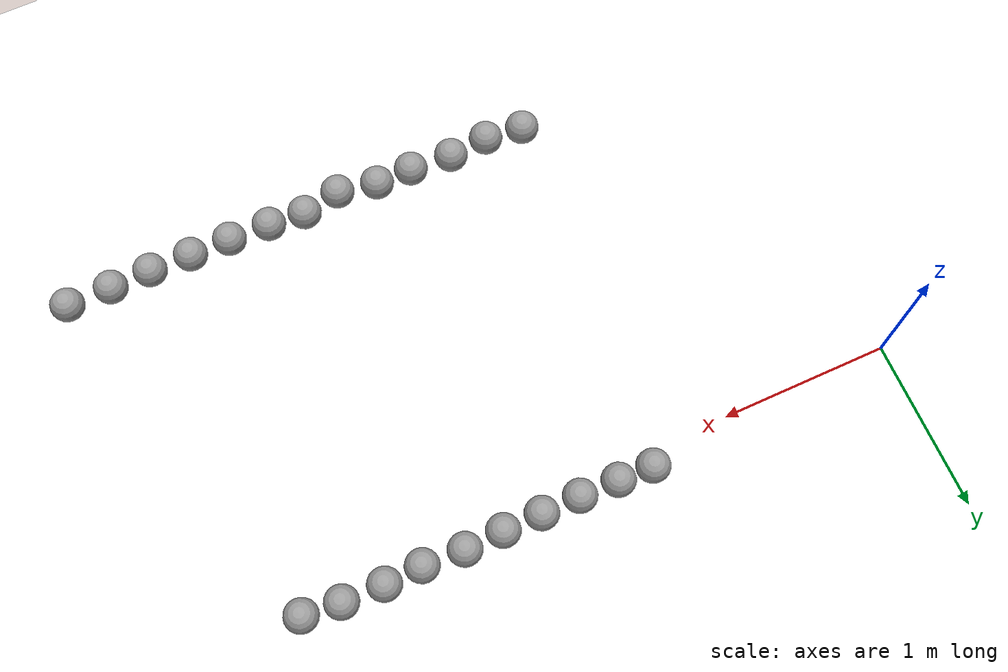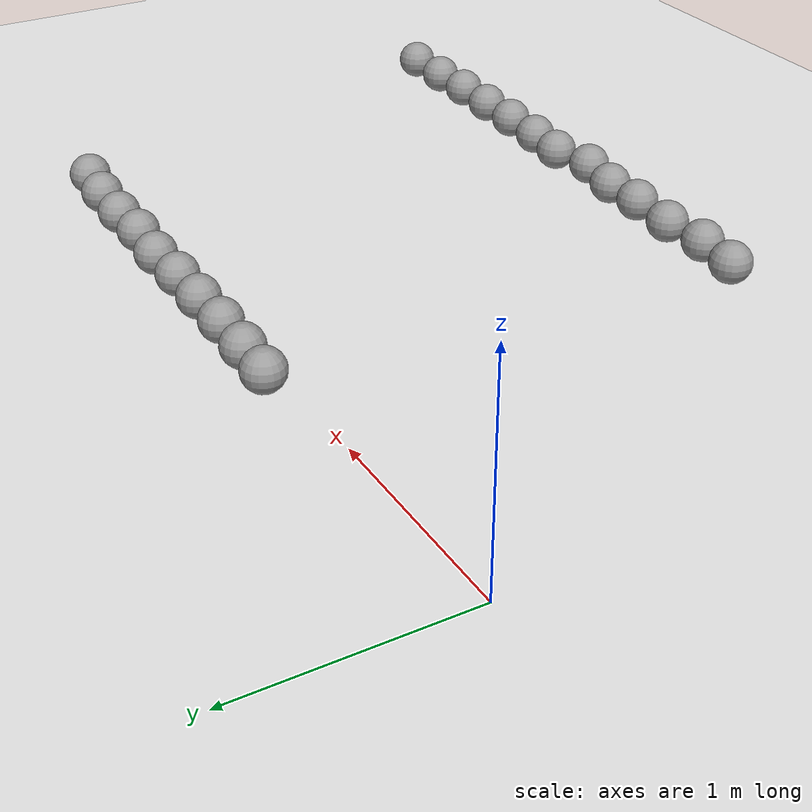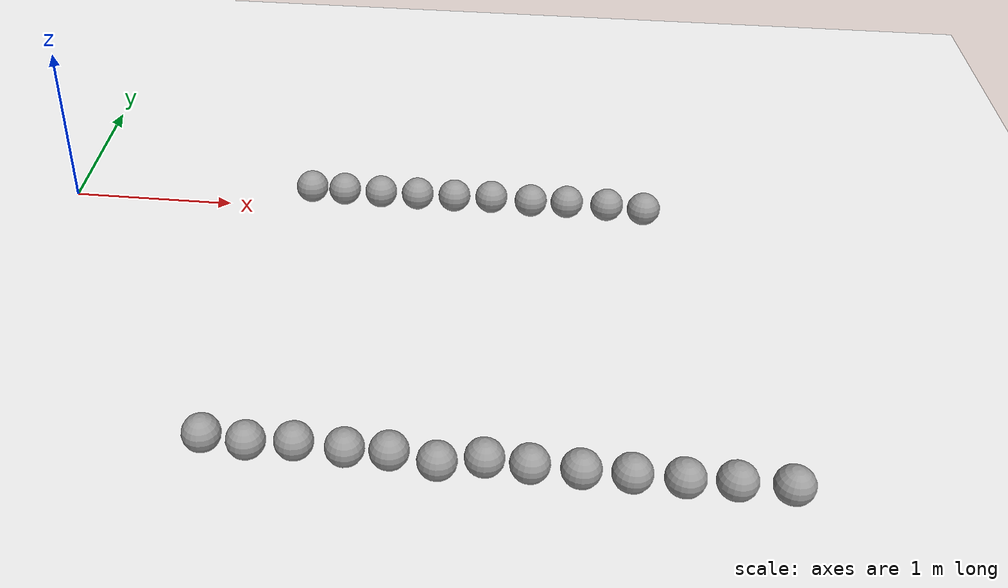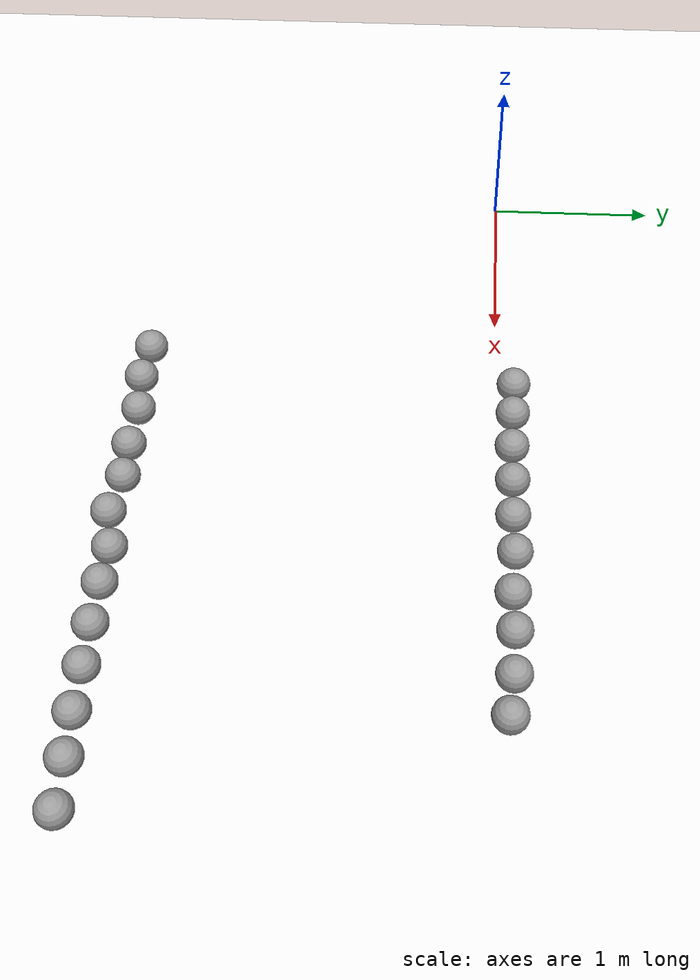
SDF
<sdf version="1.7">
 <world name="default">
  <model name="ground_plane">
   <static>1</static>
   <link name="link">
    <collision name="collision">
     <geometry><plane><normal>0 0 1</normal><size>100 100</size></plane></geometry>
     <surface>
      <contact><collide_bitmask>65535</collide_bitmask></contact>
      <friction><ode><mu>100</mu><mu2>50</mu2></ode></friction>
     </surface>
    </collision>
    <visual name="visual">
     <cast_shadows>0</cast_shadows>
     <geometry><plane><normal>0 0 1</normal><size>100 100</size></plane></geometry>
     <material>
      <script><uri>file://media/materials/scripts/gazebo.material</uri><name>Gazebo/White</name></script>
     </material>
    </visual>
   </link>
  </model>
  <model name="sphere_49">
   <link name="link_0">
    <inertial>
     <mass>1</mass>
     <inertia><ixx>0.1</ixx><ixy>0</ixy><ixz>0</ixz><iyy>0.1</iyy><iyz>0</iyz><izz>0.1</izz></inertia>
    </inertial>
    <visual name="visual">
     <geometry><sphere><radius>0.1</radius></sphere></geometry>
     <material>
      <lighting>1</lighting>
      <script><uri>file://media/materials/scripts/gazebo.material</uri><name>Gazebo/Grey</name></script>
      <shader type="pixel"><normal_map>__default__</normal_map></shader>
      <ambient>0.3 0.3 0.3 1</ambient>
      <diffuse>0.7 0.7 0.7 1</diffuse>
      <specular>0.01 0.01 0.01 1</specular>
      <emissive>0 0 0 1</emissive>
     </material>
    </visual>
    <collision name="collision">
     <geometry><sphere><radius>0.1</radius></sphere></geometry>
     <surface>
      <friction>
       <ode><mu>1</mu><mu2>1</mu2><fdir1>0 0 0</fdir1><slip1>0</slip1><slip2>0</slip2></ode>
       <torsional>
        <coefficient>1</coefficient>
        <patch_radius>0</patch_radius>
        <surface_radius>0</surface_radius>
        <use_patch_radius>1</use_patch_radius>
        <ode><slip>0</slip></ode>
       </torsional>
      </friction>
      <bounce><restitution_coefficient>0</restitution_coefficient><threshold>1e+06</threshold></bounce>
      <contact>
       <collide_without_contact>0</collide_without_contact>
       <collide_without_contact_bitmask>1</collide_without_contact_bitmask>
       <collide_bitmask>1</collide_bitmask>
       <ode>
        <soft_cfm>0</soft_cfm>
        <soft_erp>0.2</soft_erp>
        <kp>1e+13</kp>
        <kd>1</kd>
        <max_vel>0.01</max_vel>
        <min_depth>0</min_depth>
       </ode>
       <bullet>
        <split_impulse>1</split_impulse>
        <split_impulse_penetration_threshold>-0.01</split_impulse_penetration_threshold>
        <soft_cfm>0</soft_cfm>
        <soft_erp>0.2</soft_erp>
        <kp>1e+13</kp>
        <kd>1</kd>
       </bullet>
      </contact>
     </surface>
    </collision>
   </link>
   <static>0</static>
   <pose>1.3179 -2.0915 0.1 0 -0 0</pose>
  </model>
  <model name="sphere_50">
   <link name="link_0">
    <inertial>
     <mass>1</mass>
     <inertia><ixx>0.1</ixx><ixy>0</ixy><ixz>0</ixz><iyy>0.1</iyy><iyz>0</iyz><izz>0.1</izz></inertia>
    </inertial>
    <visual name="visual">
     <geometry><sphere><radius>0.1</radius></sphere></geometry>
     <material>
      <lighting>1</lighting>
      <script><uri>file://media/materials/scripts/gazebo.material</uri><name>Gazebo/Grey</name></script>
      <shader type="pixel"><normal_map>__default__</normal_map></shader>
      <ambient>0.3 0.3 0.3 1</ambient>
      <diffuse>0.7 0.7 0.7 1</diffuse>
      <specular>0.01 0.01 0.01 1</specular>
      <emissive>0 0 0 1</emissive>
     </material>
    </visual>
    <collision name="collision">
     <geometry><sphere><radius>0.1</radius></sphere></geometry>
     <surface>
      <friction>
       <ode><mu>1</mu><mu2>1</mu2><fdir1>0 0 0</fdir1><slip1>0</slip1><slip2>0</slip2></ode>
       <torsional>
        <coefficient>1</coefficient>
        <patch_radius>0</patch_radius>
        <surface_radius>0</surface_radius>
        <use_patch_radius>1</use_patch_radius>
        <ode><slip>0</slip></ode>
       </torsional>
      </friction>
      <bounce><restitution_coefficient>0</restitution_coefficient><threshold>1e+06</threshold></bounce>
      <contact>
       <collide_without_contact>0</collide_without_contact>
       <collide_without_contact_bitmask>1</collide_without_contact_bitmask>
       <collide_bitmask>1</collide_bitmask>
       <ode>
        <soft_cfm>0</soft_cfm>
        <soft_erp>0.2</soft_erp>
        <kp>1e+13</kp>
        <kd>1</kd>
        <max_vel>0.01</max_vel>
        <min_depth>0</min_depth>
       </ode>
       <bullet>
        <split_impulse>1</split_impulse>
        <split_impulse_penetration_threshold>-0.01</split_impulse_penetration_threshold>
        <soft_cfm>0</soft_cfm>
        <soft_erp>0.2</soft_erp>
        <kp>1e+13</kp>
        <kd>1</kd>
       </bullet>
      </contact>
     </surface>
    </collision>
   </link>
   <static>0</static>
   <pose>1.54416 -2.11569 0.1 0 -0 0</pose>
  </model>
  <model name="sphere_51">
   <link name="link_0">
    <inertial>
     <mass>1</mass>
     <inertia><ixx>0.1</ixx><ixy>0</ixy><ixz>0</ixz><iyy>0.1</iyy><iyz>0</iyz><izz>0.1</izz></inertia>
    </inertial>
    <visual name="visual">
     <geometry><sphere><radius>0.1</radius></sphere></geometry>
     <material>
      <lighting>1</lighting>
      <script><uri>file://media/materials/scripts/gazebo.material</uri><name>Gazebo/Grey</name></script>
      <shader type="pixel"><normal_map>__default__</normal_map></shader>
      <ambient>0.3 0.3 0.3 1</ambient>
      <diffuse>0.7 0.7 0.7 1</diffuse>
      <specular>0.01 0.01 0.01 1</specular>
      <emissive>0 0 0 1</emissive>
     </material>
    </visual>
    <collision name="collision">
     <geometry><sphere><radius>0.1</radius></sphere></geometry>
     <surface>
      <friction>
       <ode><mu>1</mu><mu2>1</mu2><fdir1>0 0 0</fdir1><slip1>0</slip1><slip2>0</slip2></ode>
       <torsional>
        <coefficient>1</coefficient>
        <patch_radius>0</patch_radius>
        <surface_radius>0</surface_radius>
        <use_patch_radius>1</use_patch_radius>
        <ode><slip>0</slip></ode>
       </torsional>
      </friction>
      <bounce><restitution_coefficient>0</restitution_coefficient><threshold>1e+06</threshold></bounce>
      <contact>
       <collide_without_contact>0</collide_without_contact>
       <collide_without_contact_bitmask>1</collide_without_contact_bitmask>
       <collide_bitmask>1</collide_bitmask>
       <ode>
        <soft_cfm>0</soft_cfm>
        <soft_erp>0.2</soft_erp>
        <kp>1e+13</kp>
        <kd>1</kd>
        <max_vel>0.01</max_vel>
        <min_depth>0</min_depth>
       </ode>
       <bullet>
        <split_impulse>1</split_impulse>
        <split_impulse_penetration_threshold>-0.01</split_impulse_penetration_threshold>
        <soft_cfm>0</soft_cfm>
        <soft_erp>0.2</soft_erp>
        <kp>1e+13</kp>
        <kd>1</kd>
       </bullet>
      </contact>
     </surface>
    </collision>
   </link>
   <static>0</static>
   <pose>1.77871 -2.09636 0.1 0 -0 0</pose>
  </model>
  <model name="sphere_52">
   <link name="link_0">
    <inertial>
     <mass>1</mass>
     <inertia><ixx>0.1</ixx><ixy>0</ixy><ixz>0</ixz><iyy>0.1</iyy><iyz>0</iyz><izz>0.1</izz></inertia>
    </inertial>
    <visual name="visual">
     <geometry><sphere><radius>0.1</radius></sphere></geometry>
     <material>
      <lighting>1</lighting>
      <script><uri>file://media/materials/scripts/gazebo.material</uri><name>Gazebo/Grey</name></script>
      <shader type="pixel"><normal_map>__default__</normal_map></shader>
      <ambient>0.3 0.3 0.3 1</ambient>
      <diffuse>0.7 0.7 0.7 1</diffuse>
      <specular>0.01 0.01 0.01 1</specular>
      <emissive>0 0 0 1</emissive>
     </material>
    </visual>
    <collision name="collision">
     <geometry><sphere><radius>0.1</radius></sphere></geometry>
     <surface>
      <friction>
       <ode><mu>1</mu><mu2>1</mu2><fdir1>0 0 0</fdir1><slip1>0</slip1><slip2>0</slip2></ode>
       <torsional>
        <coefficient>1</coefficient>
        <patch_radius>0</patch_radius>
        <surface_radius>0</surface_radius>
        <use_patch_radius>1</use_patch_radius>
        <ode><slip>0</slip></ode>
       </torsional>
      </friction>
      <bounce><restitution_coefficient>0</restitution_coefficient><threshold>1e+06</threshold></bounce>
      <contact>
       <collide_without_contact>0</collide_without_contact>
       <collide_without_contact_bitmask>1</collide_without_contact_bitmask>
       <collide_bitmask>1</collide_bitmask>
       <ode>
        <soft_cfm>0</soft_cfm>
        <soft_erp>0.2</soft_erp>
        <kp>1e+13</kp>
        <kd>1</kd>
        <max_vel>0.01</max_vel>
        <min_depth>0</min_depth>
       </ode>
       <bullet>
        <split_impulse>1</split_impulse>
        <split_impulse_penetration_threshold>-0.01</split_impulse_penetration_threshold>
        <soft_cfm>0</soft_cfm>
        <soft_erp>0.2</soft_erp>
        <kp>1e+13</kp>
        <kd>1</kd>
       </bullet>
      </contact>
     </surface>
    </collision>
   </link>
   <static>0</static>
   <pose>2.03098 -2.11168 0.1 0 -0 0</pose>
  </model>
  <model name="sphere_53">
   <link name="link_0">
    <inertial>
     <mass>1</mass>
     <inertia><ixx>0.1</ixx><ixy>0</ixy><ixz>0</ixz><iyy>0.1</iyy><iyz>0</iyz><izz>0.1</izz></inertia>
    </inertial>
    <visual name="visual">
     <geometry><sphere><radius>0.1</radius></sphere></geometry>
     <material>
      <lighting>1</lighting>
      <script><uri>file://media/materials/scripts/gazebo.material</uri><name>Gazebo/Grey</name></script>
      <shader type="pixel"><normal_map>__default__</normal_map></shader>
      <ambient>0.3 0.3 0.3 1</ambient>
      <diffuse>0.7 0.7 0.7 1</diffuse>
      <specular>0.01 0.01 0.01 1</specular>
      <emissive>0 0 0 1</emissive>
     </material>
    </visual>
    <collision name="collision">
     <geometry><sphere><radius>0.1</radius></sphere></geometry>
     <surface>
      <friction>
       <ode><mu>1</mu><mu2>1</mu2><fdir1>0 0 0</fdir1><slip1>0</slip1><slip2>0</slip2></ode>
       <torsional>
        <coefficient>1</coefficient>
        <patch_radius>0</patch_radius>
        <surface_radius>0</surface_radius>
        <use_patch_radius>1</use_patch_radius>
        <ode><slip>0</slip></ode>
       </torsional>
      </friction>
      <bounce><restitution_coefficient>0</restitution_coefficient><threshold>1e+06</threshold></bounce>
      <contact>
       <collide_without_contact>0</collide_without_contact>
       <collide_without_contact_bitmask>1</collide_without_contact_bitmask>
       <collide_bitmask>1</collide_bitmask>
       <ode>
        <soft_cfm>0</soft_cfm>
        <soft_erp>0.2</soft_erp>
        <kp>1e+13</kp>
        <kd>1</kd>
        <max_vel>0.01</max_vel>
        <min_depth>0</min_depth>
       </ode>
       <bullet>
        <split_impulse>1</split_impulse>
        <split_impulse_penetration_threshold>-0.01</split_impulse_penetration_threshold>
        <soft_cfm>0</soft_cfm>
        <soft_erp>0.2</soft_erp>
        <kp>1e+13</kp>
        <kd>1</kd>
       </bullet>
      </contact>
     </surface>
    </collision>
   </link>
   <static>0</static>
   <pose>2.24831 -2.10986 0.1 0 -0 0</pose>
  </model>
  <model name="sphere_54">
   <link name="link_0">
    <inertial>
     <mass>1</mass>
     <inertia><ixx>0.1</ixx><ixy>0</ixy><ixz>0</ixz><iyy>0.1</iyy><iyz>0</iyz><izz>0.1</izz></inertia>
    </inertial>
    <visual name="visual">
     <geometry><sphere><radius>0.1</radius></sphere></geometry>
     <material>
      <lighting>1</lighting>
      <script><uri>file://media/materials/scripts/gazebo.material</uri><name>Gazebo/Grey</name></script>
      <shader type="pixel"><normal_map>__default__</normal_map></shader>
      <ambient>0.3 0.3 0.3 1</ambient>
      <diffuse>0.7 0.7 0.7 1</diffuse>
      <specular>0.01 0.01 0.01 1</specular>
      <emissive>0 0 0 1</emissive>
     </material>
    </visual>
    <collision name="collision">
     <geometry><sphere><radius>0.1</radius></sphere></geometry>
     <surface>
      <friction>
       <ode><mu>1</mu><mu2>1</mu2><fdir1>0 0 0</fdir1><slip1>0</slip1><slip2>0</slip2></ode>
       <torsional>
        <coefficient>1</coefficient>
        <patch_radius>0</patch_radius>
        <surface_radius>0</surface_radius>
        <use_patch_radius>1</use_patch_radius>
        <ode><slip>0</slip></ode>
       </torsional>
      </friction>
      <bounce><restitution_coefficient>0</restitution_coefficient><threshold>1e+06</threshold></bounce>
      <contact>
       <collide_without_contact>0</collide_without_contact>
       <collide_without_contact_bitmask>1</collide_without_contact_bitmask>
       <collide_bitmask>1</collide_bitmask>
       <ode>
        <soft_cfm>0</soft_cfm>
        <soft_erp>0.2</soft_erp>
        <kp>1e+13</kp>
        <kd>1</kd>
        <max_vel>0.01</max_vel>
        <min_depth>0</min_depth>
       </ode>
       <bullet>
        <split_impulse>1</split_impulse>
        <split_impulse_penetration_threshold>-0.01</split_impulse_penetration_threshold>
        <soft_cfm>0</soft_cfm>
        <soft_erp>0.2</soft_erp>
        <kp>1e+13</kp>
        <kd>1</kd>
       </bullet>
      </contact>
     </surface>
    </collision>
   </link>
   <static>0</static>
   <pose>2.4834 -2.15139 0.1 0 -0 0</pose>
  </model>
  <model name="sphere_55">
   <link name="link_0">
    <inertial>
     <mass>1</mass>
     <inertia><ixx>0.1</ixx><ixy>0</ixy><ixz>0</ixz><iyy>0.1</iyy><iyz>0</iyz><izz>0.1</izz></inertia>
    </inertial>
    <visual name="visual">
     <geometry><sphere><radius>0.1</radius></sphere></geometry>
     <material>
      <lighting>1</lighting>
      <script><uri>file://media/materials/scripts/gazebo.material</uri><name>Gazebo/Grey</name></script>
      <shader type="pixel"><normal_map>__default__</normal_map></shader>
      <ambient>0.3 0.3 0.3 1</ambient>
      <diffuse>0.7 0.7 0.7 1</diffuse>
      <specular>0.01 0.01 0.01 1</specular>
      <emissive>0 0 0 1</emissive>
     </material>
    </visual>
    <collision name="collision">
     <geometry><sphere><radius>0.1</radius></sphere></geometry>
     <surface>
      <friction>
       <ode><mu>1</mu><mu2>1</mu2><fdir1>0 0 0</fdir1><slip1>0</slip1><slip2>0</slip2></ode>
       <torsional>
        <coefficient>1</coefficient>
        <patch_radius>0</patch_radius>
        <surface_radius>0</surface_radius>
        <use_patch_radius>1</use_patch_radius>
        <ode><slip>0</slip></ode>
       </torsional>
      </friction>
      <bounce><restitution_coefficient>0</restitution_coefficient><threshold>1e+06</threshold></bounce>
      <contact>
       <collide_without_contact>0</collide_without_contact>
       <collide_without_contact_bitmask>1</collide_without_contact_bitmask>
       <collide_bitmask>1</collide_bitmask>
       <ode>
        <soft_cfm>0</soft_cfm>
        <soft_erp>0.2</soft_erp>
        <kp>1e+13</kp>
        <kd>1</kd>
        <max_vel>0.01</max_vel>
        <min_depth>0</min_depth>
       </ode>
       <bullet>
        <split_impulse>1</split_impulse>
        <split_impulse_penetration_threshold>-0.01</split_impulse_penetration_threshold>
        <soft_cfm>0</soft_cfm>
        <soft_erp>0.2</soft_erp>
        <kp>1e+13</kp>
        <kd>1</kd>
       </bullet>
      </contact>
     </surface>
    </collision>
   </link>
   <static>0</static>
   <pose>2.70902 -2.10606 0.1 0 -0 0</pose>
  </model>
  <model name="sphere_56">
   <link name="link_0">
    <inertial>
     <mass>1</mass>
     <inertia><ixx>0.1</ixx><ixy>0</ixy><ixz>0</ixz><iyy>0.1</iyy><iyz>0</iyz><izz>0.1</izz></inertia>
    </inertial>
    <visual name="visual">
     <geometry><sphere><radius>0.1</radius></sphere></geometry>
     <material>
      <lighting>1</lighting>
      <script><uri>file://media/materials/scripts/gazebo.material</uri><name>Gazebo/Grey</name></script>
      <shader type="pixel"><normal_map>__default__</normal_map></shader>
      <ambient>0.3 0.3 0.3 1</ambient>
      <diffuse>0.7 0.7 0.7 1</diffuse>
      <specular>0.01 0.01 0.01 1</specular>
      <emissive>0 0 0 1</emissive>
     </material>
    </visual>
    <collision name="collision">
     <geometry><sphere><radius>0.1</radius></sphere></geometry>
     <surface>
      <friction>
       <ode><mu>1</mu><mu2>1</mu2><fdir1>0 0 0</fdir1><slip1>0</slip1><slip2>0</slip2></ode>
       <torsional>
        <coefficient>1</coefficient>
        <patch_radius>0</patch_radius>
        <surface_radius>0</surface_radius>
        <use_patch_radius>1</use_patch_radius>
        <ode><slip>0</slip></ode>
       </torsional>
      </friction>
      <bounce><restitution_coefficient>0</restitution_coefficient><threshold>1e+06</threshold></bounce>
      <contact>
       <collide_without_contact>0</collide_without_contact>
       <collide_without_contact_bitmask>1</collide_without_contact_bitmask>
       <collide_bitmask>1</collide_bitmask>
       <ode>
        <soft_cfm>0</soft_cfm>
        <soft_erp>0.2</soft_erp>
        <kp>1e+13</kp>
        <kd>1</kd>
        <max_vel>0.01</max_vel>
        <min_depth>0</min_depth>
       </ode>
       <bullet>
        <split_impulse>1</split_impulse>
        <split_impulse_penetration_threshold>-0.01</split_impulse_penetration_threshold>
        <soft_cfm>0</soft_cfm>
        <soft_erp>0.2</soft_erp>
        <kp>1e+13</kp>
        <kd>1</kd>
       </bullet>
      </contact>
     </surface>
    </collision>
   </link>
   <static>0</static>
   <pose>2.92652 -2.12166 0.1 0 -0 0</pose>
  </model>
  <model name="sphere_57">
   <link name="link_0">
    <inertial>
     <mass>1</mass>
     <inertia><ixx>0.1</ixx><ixy>0</ixy><ixz>0</ixz><iyy>0.1</iyy><iyz>0</iyz><izz>0.1</izz></inertia>
    </inertial>
    <visual name="visual">
     <geometry><sphere><radius>0.1</radius></sphere></geometry>
     <material>
      <lighting>1</lighting>
      <script><uri>file://media/materials/scripts/gazebo.material</uri><name>Gazebo/Grey</name></script>
      <shader type="pixel"><normal_map>__default__</normal_map></shader>
      <ambient>0.3 0.3 0.3 1</ambient>
      <diffuse>0.7 0.7 0.7 1</diffuse>
      <specular>0.01 0.01 0.01 1</specular>
      <emissive>0 0 0 1</emissive>
     </material>
    </visual>
    <collision name="collision">
     <geometry><sphere><radius>0.1</radius></sphere></geometry>
     <surface>
      <friction>
       <ode><mu>1</mu><mu2>1</mu2><fdir1>0 0 0</fdir1><slip1>0</slip1><slip2>0</slip2></ode>
       <torsional>
        <coefficient>1</coefficient>
        <patch_radius>0</patch_radius>
        <surface_radius>0</surface_radius>
        <use_patch_radius>1</use_patch_radius>
        <ode><slip>0</slip></ode>
       </torsional>
      </friction>
      <bounce><restitution_coefficient>0</restitution_coefficient><threshold>1e+06</threshold></bounce>
      <contact>
       <collide_without_contact>0</collide_without_contact>
       <collide_without_contact_bitmask>1</collide_without_contact_bitmask>
       <collide_bitmask>1</collide_bitmask>
       <ode>
        <soft_cfm>0</soft_cfm>
        <soft_erp>0.2</soft_erp>
        <kp>1e+13</kp>
        <kd>1</kd>
        <max_vel>0.01</max_vel>
        <min_depth>0</min_depth>
       </ode>
       <bullet>
        <split_impulse>1</split_impulse>
        <split_impulse_penetration_threshold>-0.01</split_impulse_penetration_threshold>
        <soft_cfm>0</soft_cfm>
        <soft_erp>0.2</soft_erp>
        <kp>1e+13</kp>
        <kd>1</kd>
       </bullet>
      </contact>
     </surface>
    </collision>
   </link>
   <static>0</static>
   <pose>3.17 -2.12832 0.1 0 -0 0</pose>
  </model>
  <model name="sphere_58">
   <link name="link_0">
    <inertial>
     <mass>1</mass>
     <inertia><ixx>0.1</ixx><ixy>0</ixy><ixz>0</ixz><iyy>0.1</iyy><iyz>0</iyz><izz>0.1</izz></inertia>
    </inertial>
    <visual name="visual">
     <geometry><sphere><radius>0.1</radius></sphere></geometry>
     <material>
      <lighting>1</lighting>
      <script><uri>file://media/materials/scripts/gazebo.material</uri><name>Gazebo/Grey</name></script>
      <shader type="pixel"><normal_map>__default__</normal_map></shader>
      <ambient>0.3 0.3 0.3 1</ambient>
      <diffuse>0.7 0.7 0.7 1</diffuse>
      <specular>0.01 0.01 0.01 1</specular>
      <emissive>0 0 0 1</emissive>
     </material>
    </visual>
    <collision name="collision">
     <geometry><sphere><radius>0.1</radius></sphere></geometry>
     <surface>
      <friction>
       <ode><mu>1</mu><mu2>1</mu2><fdir1>0 0 0</fdir1><slip1>0</slip1><slip2>0</slip2></ode>
       <torsional>
        <coefficient>1</coefficient>
        <patch_radius>0</patch_radius>
        <surface_radius>0</surface_radius>
        <use_patch_radius>1</use_patch_radius>
        <ode><slip>0</slip></ode>
       </torsional>
      </friction>
      <bounce><restitution_coefficient>0</restitution_coefficient><threshold>1e+06</threshold></bounce>
      <contact>
       <collide_without_contact>0</collide_without_contact>
       <collide_without_contact_bitmask>1</collide_without_contact_bitmask>
       <collide_bitmask>1</collide_bitmask>
       <ode>
        <soft_cfm>0</soft_cfm>
        <soft_erp>0.2</soft_erp>
        <kp>1e+13</kp>
        <kd>1</kd>
        <max_vel>0.01</max_vel>
        <min_depth>0</min_depth>
       </ode>
       <bullet>
        <split_impulse>1</split_impulse>
        <split_impulse_penetration_threshold>-0.01</split_impulse_penetration_threshold>
        <soft_cfm>0</soft_cfm>
        <soft_erp>0.2</soft_erp>
        <kp>1e+13</kp>
        <kd>1</kd>
       </bullet>
      </contact>
     </surface>
    </collision>
   </link>
   <static>0</static>
   <pose>3.41086 -2.12917 0.1 0 -0 0</pose>
  </model>
  <model name="sphere_59">
   <link name="link_0">
    <inertial>
     <mass>1</mass>
     <inertia><ixx>0.1</ixx><ixy>0</ixy><ixz>0</ixz><iyy>0.1</iyy><iyz>0</iyz><izz>0.1</izz></inertia>
    </inertial>
    <visual name="visual">
     <geometry><sphere><radius>0.1</radius></sphere></geometry>
     <material>
      <lighting>1</lighting>
      <script><uri>file://media/materials/scripts/gazebo.material</uri><name>Gazebo/Grey</name></script>
      <shader type="pixel"><normal_map>__default__</normal_map></shader>
      <ambient>0.3 0.3 0.3 1</ambient>
      <diffuse>0.7 0.7 0.7 1</diffuse>
      <specular>0.01 0.01 0.01 1</specular>
      <emissive>0 0 0 1</emissive>
     </material>
    </visual>
    <collision name="collision">
     <geometry><sphere><radius>0.1</radius></sphere></geometry>
     <surface>
      <friction>
       <ode><mu>1</mu><mu2>1</mu2><fdir1>0 0 0</fdir1><slip1>0</slip1><slip2>0</slip2></ode>
       <torsional>
        <coefficient>1</coefficient>
        <patch_radius>0</patch_radius>
        <surface_radius>0</surface_radius>
        <use_patch_radius>1</use_patch_radius>
        <ode><slip>0</slip></ode>
       </torsional>
      </friction>
      <bounce><restitution_coefficient>0</restitution_coefficient><threshold>1e+06</threshold></bounce>
      <contact>
       <collide_without_contact>0</collide_without_contact>
       <collide_without_contact_bitmask>1</collide_without_contact_bitmask>
       <collide_bitmask>1</collide_bitmask>
       <ode>
        <soft_cfm>0</soft_cfm>
        <soft_erp>0.2</soft_erp>
        <kp>1e+13</kp>
        <kd>1</kd>
        <max_vel>0.01</max_vel>
        <min_depth>0</min_depth>
       </ode>
       <bullet>
        <split_impulse>1</split_impulse>
        <split_impulse_penetration_threshold>-0.01</split_impulse_penetration_threshold>
        <soft_cfm>0</soft_cfm>
        <soft_erp>0.2</soft_erp>
        <kp>1e+13</kp>
        <kd>1</kd>
       </bullet>
      </contact>
     </surface>
    </collision>
   </link>
   <static>0</static>
   <pose>3.65822 -2.13229 0.1 0 -0 0</pose>
  </model>
  <model name="sphere_60">
   <link name="link_0">
    <inertial>
     <mass>1</mass>
     <inertia><ixx>0.1</ixx><ixy>0</ixy><ixz>0</ixz><iyy>0.1</iyy><iyz>0</iyz><izz>0.1</izz></inertia>
    </inertial>
    <visual name="visual">
     <geometry><sphere><radius>0.1</radius></sphere></geometry>
     <material>
      <lighting>1</lighting>
      <script><uri>file://media/materials/scripts/gazebo.material</uri><name>Gazebo/Grey</name></script>
      <shader type="pixel"><normal_map>__default__</normal_map></shader>
      <ambient>0.3 0.3 0.3 1</ambient>
      <diffuse>0.7 0.7 0.7 1</diffuse>
      <specular>0.01 0.01 0.01 1</specular>
      <emissive>0 0 0 1</emissive>
     </material>
    </visual>
    <collision name="collision">
     <geometry><sphere><radius>0.1</radius></sphere></geometry>
     <surface>
      <friction>
       <ode><mu>1</mu><mu2>1</mu2><fdir1>0 0 0</fdir1><slip1>0</slip1><slip2>0</slip2></ode>
       <torsional>
        <coefficient>1</coefficient>
        <patch_radius>0</patch_radius>
        <surface_radius>0</surface_radius>
        <use_patch_radius>1</use_patch_radius>
        <ode><slip>0</slip></ode>
       </torsional>
      </friction>
      <bounce><restitution_coefficient>0</restitution_coefficient><threshold>1e+06</threshold></bounce>
      <contact>
       <collide_without_contact>0</collide_without_contact>
       <collide_without_contact_bitmask>1</collide_without_contact_bitmask>
       <collide_bitmask>1</collide_bitmask>
       <ode>
        <soft_cfm>0</soft_cfm>
        <soft_erp>0.2</soft_erp>
        <kp>1e+13</kp>
        <kd>1</kd>
        <max_vel>0.01</max_vel>
        <min_depth>0</min_depth>
       </ode>
       <bullet>
        <split_impulse>1</split_impulse>
        <split_impulse_penetration_threshold>-0.01</split_impulse_penetration_threshold>
        <soft_cfm>0</soft_cfm>
        <soft_erp>0.2</soft_erp>
        <kp>1e+13</kp>
        <kd>1</kd>
       </bullet>
      </contact>
     </surface>
    </collision>
   </link>
   <static>0</static>
   <pose>3.90029 -2.12513 0.1 0 -0 0</pose>
  </model>
  <model name="sphere_61">
   <link name="link_0">
    <inertial>
     <mass>1</mass>
     <inertia><ixx>0.1</ixx><ixy>0</ixy><ixz>0</ixz><iyy>0.1</iyy><iyz>0</iyz><izz>0.1</izz></inertia>
    </inertial>
    <visual name="visual">
     <geometry><sphere><radius>0.1</radius></sphere></geometry>
     <material>
      <lighting>1</lighting>
      <script><uri>file://media/materials/scripts/gazebo.material</uri><name>Gazebo/Grey</name></script>
      <shader type="pixel"><normal_map>__default__</normal_map></shader>
      <ambient>0.3 0.3 0.3 1</ambient>
      <diffuse>0.7 0.7 0.7 1</diffuse>
      <specular>0.01 0.01 0.01 1</specular>
      <emissive>0 0 0 1</emissive>
     </material>
    </visual>
    <collision name="collision">
     <geometry><sphere><radius>0.1</radius></sphere></geometry>
     <surface>
      <friction>
       <ode><mu>1</mu><mu2>1</mu2><fdir1>0 0 0</fdir1><slip1>0</slip1><slip2>0</slip2></ode>
       <torsional>
        <coefficient>1</coefficient>
        <patch_radius>0</patch_radius>
        <surface_radius>0</surface_radius>
        <use_patch_radius>1</use_patch_radius>
        <ode><slip>0</slip></ode>
       </torsional>
      </friction>
      <bounce><restitution_coefficient>0</restitution_coefficient><threshold>1e+06</threshold></bounce>
      <contact>
       <collide_without_contact>0</collide_without_contact>
       <collide_without_contact_bitmask>1</collide_without_contact_bitmask>
       <collide_bitmask>1</collide_bitmask>
       <ode>
        <soft_cfm>0</soft_cfm>
        <soft_erp>0.2</soft_erp>
        <kp>1e+13</kp>
        <kd>1</kd>
        <max_vel>0.01</max_vel>
        <min_depth>0</min_depth>
       </ode>
       <bullet>
        <split_impulse>1</split_impulse>
        <split_impulse_penetration_threshold>-0.01</split_impulse_penetration_threshold>
        <soft_cfm>0</soft_cfm>
        <soft_erp>0.2</soft_erp>
        <kp>1e+13</kp>
        <kd>1</kd>
       </bullet>
      </contact>
     </surface>
    </collision>
   </link>
   <static>0</static>
   <pose>4.16305 -2.12294 0.1 0 -0 0</pose>
  </model>
  <model name="sphere_64">
   <link name="link_0">
    <inertial>
     <mass>1</mass>
     <inertia><ixx>0.1</ixx><ixy>0</ixy><ixz>0</ixz><iyy>0.1</iyy><iyz>0</iyz><izz>0.1</izz></inertia>
    </inertial>
    <visual name="visual">
     <geometry><sphere><radius>0.1</radius></sphere></geometry>
     <material>
      <lighting>1</lighting>
      <script><uri>file://media/materials/scripts/gazebo.material</uri><name>Gazebo/Grey</name></script>
      <shader type="pixel"><normal_map>__default__</normal_map></shader>
      <ambient>0.3 0.3 0.3 1</ambient>
      <diffuse>0.7 0.7 0.7 1</diffuse>
      <specular>0.01 0.01 0.01 1</specular>
      <emissive>0 0 0 1</emissive>
     </material>
    </visual>
    <collision name="collision">
     <geometry><sphere><radius>0.1</radius></sphere></geometry>
     <surface>
      <friction>
       <ode><mu>1</mu><mu2>1</mu2><fdir1>0 0 0</fdir1><slip1>0</slip1><slip2>0</slip2></ode>
       <torsional>
        <coefficient>1</coefficient>
        <patch_radius>0</patch_radius>
        <surface_radius>0</surface_radius>
        <use_patch_radius>1</use_patch_radius>
        <ode><slip>0</slip></ode>
       </torsional>
      </friction>
      <bounce><restitution_coefficient>0</restitution_coefficient><threshold>1e+06</threshold></bounce>
      <contact>
       <collide_without_contact>0</collide_without_contact>
       <collide_without_contact_bitmask>1</collide_without_contact_bitmask>
       <collide_bitmask>1</collide_bitmask>
       <ode>
        <soft_cfm>0</soft_cfm>
        <soft_erp>0.2</soft_erp>
        <kp>1e+13</kp>
        <kd>1</kd>
        <max_vel>0.01</max_vel>
        <min_depth>0</min_depth>
       </ode>
       <bullet>
        <split_impulse>1</split_impulse>
        <split_impulse_penetration_threshold>-0.01</split_impulse_penetration_threshold>
        <soft_cfm>0</soft_cfm>
        <soft_erp>0.2</soft_erp>
        <kp>1e+13</kp>
        <kd>1</kd>
       </bullet>
      </contact>
     </surface>
    </collision>
   </link>
   <static>0</static>
   <pose>1.51709 0.105594 0.1 0 -0 0</pose>
  </model>
  <model name="sphere_65">
   <link name="link_0">
    <inertial>
     <mass>1</mass>
     <inertia><ixx>0.1</ixx><ixy>0</ixy><ixz>0</ixz><iyy>0.1</iyy><iyz>0</iyz><izz>0.1</izz></inertia>
    </inertial>
    <visual name="visual">
     <geometry><sphere><radius>0.1</radius></sphere></geometry>
     <material>
      <lighting>1</lighting>
      <script><uri>file://media/materials/scripts/gazebo.material</uri><name>Gazebo/Grey</name></script>
      <shader type="pixel"><normal_map>__default__</normal_map></shader>
      <ambient>0.3 0.3 0.3 1</ambient>
      <diffuse>0.7 0.7 0.7 1</diffuse>
      <specular>0.01 0.01 0.01 1</specular>
      <emissive>0 0 0 1</emissive>
     </material>
    </visual>
    <collision name="collision">
     <geometry><sphere><radius>0.1</radius></sphere></geometry>
     <surface>
      <friction>
       <ode><mu>1</mu><mu2>1</mu2><fdir1>0 0 0</fdir1><slip1>0</slip1><slip2>0</slip2></ode>
       <torsional>
        <coefficient>1</coefficient>
        <patch_radius>0</patch_radius>
        <surface_radius>0</surface_radius>
        <use_patch_radius>1</use_patch_radius>
        <ode><slip>0</slip></ode>
       </torsional>
      </friction>
      <bounce><restitution_coefficient>0</restitution_coefficient><threshold>1e+06</threshold></bounce>
      <contact>
       <collide_without_contact>0</collide_without_contact>
       <collide_without_contact_bitmask>1</collide_without_contact_bitmask>
       <collide_bitmask>1</collide_bitmask>
       <ode>
        <soft_cfm>0</soft_cfm>
        <soft_erp>0.2</soft_erp>
        <kp>1e+13</kp>
        <kd>1</kd>
        <max_vel>0.01</max_vel>
        <min_depth>0</min_depth>
       </ode>
       <bullet>
        <split_impulse>1</split_impulse>
        <split_impulse_penetration_threshold>-0.01</split_impulse_penetration_threshold>
        <soft_cfm>0</soft_cfm>
        <soft_erp>0.2</soft_erp>
        <kp>1e+13</kp>
        <kd>1</kd>
       </bullet>
      </contact>
     </surface>
    </collision>
   </link>
   <static>0</static>
   <pose>1.7263 0.099869 0.1 0 -0 0</pose>
  </model>
  <model name="sphere_66">
   <link name="link_0">
    <inertial>
     <mass>1</mass>
     <inertia><ixx>0.1</ixx><ixy>0</ixy><ixz>0</ixz><iyy>0.1</iyy><iyz>0</iyz><izz>0.1</izz></inertia>
    </inertial>
    <visual name="visual">
     <geometry><sphere><radius>0.1</radius></sphere></geometry>
     <material>
      <lighting>1</lighting>
      <script><uri>file://media/materials/scripts/gazebo.material</uri><name>Gazebo/Grey</name></script>
      <shader type="pixel"><normal_map>__default__</normal_map></shader>
      <ambient>0.3 0.3 0.3 1</ambient>
      <diffuse>0.7 0.7 0.7 1</diffuse>
      <specular>0.01 0.01 0.01 1</specular>
      <emissive>0 0 0 1</emissive>
     </material>
    </visual>
    <collision name="collision">
     <geometry><sphere><radius>0.1</radius></sphere></geometry>
     <surface>
      <friction>
       <ode><mu>1</mu><mu2>1</mu2><fdir1>0 0 0</fdir1><slip1>0</slip1><slip2>0</slip2></ode>
       <torsional>
        <coefficient>1</coefficient>
        <patch_radius>0</patch_radius>
        <surface_radius>0</surface_radius>
        <use_patch_radius>1</use_patch_radius>
        <ode><slip>0</slip></ode>
       </torsional>
      </friction>
      <bounce><restitution_coefficient>0</restitution_coefficient><threshold>1e+06</threshold></bounce>
      <contact>
       <collide_without_contact>0</collide_without_contact>
       <collide_without_contact_bitmask>1</collide_without_contact_bitmask>
       <collide_bitmask>1</collide_bitmask>
       <ode>
        <soft_cfm>0</soft_cfm>
        <soft_erp>0.2</soft_erp>
        <kp>1e+13</kp>
        <kd>1</kd>
        <max_vel>0.01</max_vel>
        <min_depth>0</min_depth>
       </ode>
       <bullet>
        <split_impulse>1</split_impulse>
        <split_impulse_penetration_threshold>-0.01</split_impulse_penetration_threshold>
        <soft_cfm>0</soft_cfm>
        <soft_erp>0.2</soft_erp>
        <kp>1e+13</kp>
        <kd>1</kd>
       </bullet>
      </contact>
     </surface>
    </collision>
   </link>
   <static>0</static>
   <pose>1.95782 0.094245 0.1 0 -0 0</pose>
  </model>
  <model name="sphere_67">
   <link name="link_0">
    <inertial>
     <mass>1</mass>
     <inertia><ixx>0.1</ixx><ixy>0</ixy><ixz>0</ixz><iyy>0.1</iyy><iyz>0</iyz><izz>0.1</izz></inertia>
    </inertial>
    <visual name="visual">
     <geometry><sphere><radius>0.1</radius></sphere></geometry>
     <material>
      <lighting>1</lighting>
      <script><uri>file://media/materials/scripts/gazebo.material</uri><name>Gazebo/Grey</name></script>
      <shader type="pixel"><normal_map>__default__</normal_map></shader>
      <ambient>0.3 0.3 0.3 1</ambient>
      <diffuse>0.7 0.7 0.7 1</diffuse>
      <specular>0.01 0.01 0.01 1</specular>
      <emissive>0 0 0 1</emissive>
     </material>
    </visual>
    <collision name="collision">
     <geometry><sphere><radius>0.1</radius></sphere></geometry>
     <surface>
      <friction>
       <ode><mu>1</mu><mu2>1</mu2><fdir1>0 0 0</fdir1><slip1>0</slip1><slip2>0</slip2></ode>
       <torsional>
        <coefficient>1</coefficient>
        <patch_radius>0</patch_radius>
        <surface_radius>0</surface_radius>
        <use_patch_radius>1</use_patch_radius>
        <ode><slip>0</slip></ode>
       </torsional>
      </friction>
      <bounce><restitution_coefficient>0</restitution_coefficient><threshold>1e+06</threshold></bounce>
      <contact>
       <collide_without_contact>0</collide_without_contact>
       <collide_without_contact_bitmask>1</collide_without_contact_bitmask>
       <collide_bitmask>1</collide_bitmask>
       <ode>
        <soft_cfm>0</soft_cfm>
        <soft_erp>0.2</soft_erp>
        <kp>1e+13</kp>
        <kd>1</kd>
        <max_vel>0.01</max_vel>
        <min_depth>0</min_depth>
       </ode>
       <bullet>
        <split_impulse>1</split_impulse>
        <split_impulse_penetration_threshold>-0.01</split_impulse_penetration_threshold>
        <soft_cfm>0</soft_cfm>
        <soft_erp>0.2</soft_erp>
        <kp>1e+13</kp>
        <kd>1</kd>
       </bullet>
      </contact>
     </surface>
    </collision>
   </link>
   <static>0</static>
   <pose>2.18937 0.096173 0.1 0 -0 0</pose>
  </model>
  <model name="sphere_68">
   <link name="link_0">
    <inertial>
     <mass>1</mass>
     <inertia><ixx>0.1</ixx><ixy>0</ixy><ixz>0</ixz><iyy>0.1</iyy><iyz>0</iyz><izz>0.1</izz></inertia>
    </inertial>
    <visual name="visual">
     <geometry><sphere><radius>0.1</radius></sphere></geometry>
     <material>
      <lighting>1</lighting>
      <script><uri>file://media/materials/scripts/gazebo.material</uri><name>Gazebo/Grey</name></script>
      <shader type="pixel"><normal_map>__default__</normal_map></shader>
      <ambient>0.3 0.3 0.3 1</ambient>
      <diffuse>0.7 0.7 0.7 1</diffuse>
      <specular>0.01 0.01 0.01 1</specular>
      <emissive>0 0 0 1</emissive>
     </material>
    </visual>
    <collision name="collision">
     <geometry><sphere><radius>0.1</radius></sphere></geometry>
     <surface>
      <friction>
       <ode><mu>1</mu><mu2>1</mu2><fdir1>0 0 0</fdir1><slip1>0</slip1><slip2>0</slip2></ode>
       <torsional>
        <coefficient>1</coefficient>
        <patch_radius>0</patch_radius>
        <surface_radius>0</surface_radius>
        <use_patch_radius>1</use_patch_radius>
        <ode><slip>0</slip></ode>
       </torsional>
      </friction>
      <bounce><restitution_coefficient>0</restitution_coefficient><threshold>1e+06</threshold></bounce>
      <contact>
       <collide_without_contact>0</collide_without_contact>
       <collide_without_contact_bitmask>1</collide_without_contact_bitmask>
       <collide_bitmask>1</collide_bitmask>
       <ode>
        <soft_cfm>0</soft_cfm>
        <soft_erp>0.2</soft_erp>
        <kp>1e+13</kp>
        <kd>1</kd>
        <max_vel>0.01</max_vel>
        <min_depth>0</min_depth>
       </ode>
       <bullet>
        <split_impulse>1</split_impulse>
        <split_impulse_penetration_threshold>-0.01</split_impulse_penetration_threshold>
        <soft_cfm>0</soft_cfm>
        <soft_erp>0.2</soft_erp>
        <kp>1e+13</kp>
        <kd>1</kd>
       </bullet>
      </contact>
     </surface>
    </collision>
   </link>
   <static>0</static>
   <pose>2.42092 0.098084 0.1 0 -0 0</pose>
  </model>
  <model name="sphere_69">
   <link name="link_0">
    <inertial>
     <mass>1</mass>
     <inertia><ixx>0.1</ixx><ixy>0</ixy><ixz>0</ixz><iyy>0.1</iyy><iyz>0</iyz><izz>0.1</izz></inertia>
    </inertial>
    <visual name="visual">
     <geometry><sphere><radius>0.1</radius></sphere></geometry>
     <material>
      <lighting>1</lighting>
      <script><uri>file://media/materials/scripts/gazebo.material</uri><name>Gazebo/Grey</name></script>
      <shader type="pixel"><normal_map>__default__</normal_map></shader>
      <ambient>0.3 0.3 0.3 1</ambient>
      <diffuse>0.7 0.7 0.7 1</diffuse>
      <specular>0.01 0.01 0.01 1</specular>
      <emissive>0 0 0 1</emissive>
     </material>
    </visual>
    <collision name="collision">
     <geometry><sphere><radius>0.1</radius></sphere></geometry>
     <surface>
      <friction>
       <ode><mu>1</mu><mu2>1</mu2><fdir1>0 0 0</fdir1><slip1>0</slip1><slip2>0</slip2></ode>
       <torsional>
        <coefficient>1</coefficient>
        <patch_radius>0</patch_radius>
        <surface_radius>0</surface_radius>
        <use_patch_radius>1</use_patch_radius>
        <ode><slip>0</slip></ode>
       </torsional>
      </friction>
      <bounce><restitution_coefficient>0</restitution_coefficient><threshold>1e+06</threshold></bounce>
      <contact>
       <collide_without_contact>0</collide_without_contact>
       <collide_without_contact_bitmask>1</collide_without_contact_bitmask>
       <collide_bitmask>1</collide_bitmask>
       <ode>
        <soft_cfm>0</soft_cfm>
        <soft_erp>0.2</soft_erp>
        <kp>1e+13</kp>
        <kd>1</kd>
        <max_vel>0.01</max_vel>
        <min_depth>0</min_depth>
       </ode>
       <bullet>
        <split_impulse>1</split_impulse>
        <split_impulse_penetration_threshold>-0.01</split_impulse_penetration_threshold>
        <soft_cfm>0</soft_cfm>
        <soft_erp>0.2</soft_erp>
        <kp>1e+13</kp>
        <kd>1</kd>
       </bullet>
      </contact>
     </surface>
    </collision>
   </link>
   <static>0</static>
   <pose>2.65239 0.107481 0.1 0 -0 0</pose>
  </model>
  <model name="sphere_70">
   <link name="link_0">
    <inertial>
     <mass>1</mass>
     <inertia><ixx>0.1</ixx><ixy>0</ixy><ixz>0</ixz><iyy>0.1</iyy><iyz>0</iyz><izz>0.1</izz></inertia>
    </inertial>
    <visual name="visual">
     <geometry><sphere><radius>0.1</radius></sphere></geometry>
     <material>
      <lighting>1</lighting>
      <script><uri>file://media/materials/scripts/gazebo.material</uri><name>Gazebo/Grey</name></script>
      <shader type="pixel"><normal_map>__default__</normal_map></shader>
      <ambient>0.3 0.3 0.3 1</ambient>
      <diffuse>0.7 0.7 0.7 1</diffuse>
      <specular>0.01 0.01 0.01 1</specular>
      <emissive>0 0 0 1</emissive>
     </material>
    </visual>
    <collision name="collision">
     <geometry><sphere><radius>0.1</radius></sphere></geometry>
     <surface>
      <friction>
       <ode><mu>1</mu><mu2>1</mu2><fdir1>0 0 0</fdir1><slip1>0</slip1><slip2>0</slip2></ode>
       <torsional>
        <coefficient>1</coefficient>
        <patch_radius>0</patch_radius>
        <surface_radius>0</surface_radius>
        <use_patch_radius>1</use_patch_radius>
        <ode><slip>0</slip></ode>
       </torsional>
      </friction>
      <bounce><restitution_coefficient>0</restitution_coefficient><threshold>1e+06</threshold></bounce>
      <contact>
       <collide_without_contact>0</collide_without_contact>
       <collide_without_contact_bitmask>1</collide_without_contact_bitmask>
       <collide_bitmask>1</collide_bitmask>
       <ode>
        <soft_cfm>0</soft_cfm>
        <soft_erp>0.2</soft_erp>
        <kp>1e+13</kp>
        <kd>1</kd>
        <max_vel>0.01</max_vel>
        <min_depth>0</min_depth>
       </ode>
       <bullet>
        <split_impulse>1</split_impulse>
        <split_impulse_penetration_threshold>-0.01</split_impulse_penetration_threshold>
        <soft_cfm>0</soft_cfm>
        <soft_erp>0.2</soft_erp>
        <kp>1e+13</kp>
        <kd>1</kd>
       </bullet>
      </contact>
     </surface>
    </collision>
   </link>
   <static>0</static>
   <pose>2.89905 0.094568 0.1 0 -0 0</pose>
  </model>
  <model name="sphere_71">
   <link name="link_0">
    <inertial>
     <mass>1</mass>
     <inertia><ixx>0.1</ixx><ixy>0</ixy><ixz>0</ixz><iyy>0.1</iyy><iyz>0</iyz><izz>0.1</izz></inertia>
    </inertial>
    <visual name="visual">
     <geometry><sphere><radius>0.1</radius></sphere></geometry>
     <material>
      <lighting>1</lighting>
      <script><uri>file://media/materials/scripts/gazebo.material</uri><name>Gazebo/Grey</name></script>
      <shader type="pixel"><normal_map>__default__</normal_map></shader>
      <ambient>0.3 0.3 0.3 1</ambient>
      <diffuse>0.7 0.7 0.7 1</diffuse>
      <specular>0.01 0.01 0.01 1</specular>
      <emissive>0 0 0 1</emissive>
     </material>
    </visual>
    <collision name="collision">
     <geometry><sphere><radius>0.1</radius></sphere></geometry>
     <surface>
      <friction>
       <ode><mu>1</mu><mu2>1</mu2><fdir1>0 0 0</fdir1><slip1>0</slip1><slip2>0</slip2></ode>
       <torsional>
        <coefficient>1</coefficient>
        <patch_radius>0</patch_radius>
        <surface_radius>0</surface_radius>
        <use_patch_radius>1</use_patch_radius>
        <ode><slip>0</slip></ode>
       </torsional>
      </friction>
      <bounce><restitution_coefficient>0</restitution_coefficient><threshold>1e+06</threshold></bounce>
      <contact>
       <collide_without_contact>0</collide_without_contact>
       <collide_without_contact_bitmask>1</collide_without_contact_bitmask>
       <collide_bitmask>1</collide_bitmask>
       <ode>
        <soft_cfm>0</soft_cfm>
        <soft_erp>0.2</soft_erp>
        <kp>1e+13</kp>
        <kd>1</kd>
        <max_vel>0.01</max_vel>
        <min_depth>0</min_depth>
       </ode>
       <bullet>
        <split_impulse>1</split_impulse>
        <split_impulse_penetration_threshold>-0.01</split_impulse_penetration_threshold>
        <soft_cfm>0</soft_cfm>
        <soft_erp>0.2</soft_erp>
        <kp>1e+13</kp>
        <kd>1</kd>
       </bullet>
      </contact>
     </surface>
    </collision>
   </link>
   <static>0</static>
   <pose>3.12304 0.103899 0.1 0 -0 0</pose>
  </model>
  <model name="sphere_72">
   <link name="link_0">
    <inertial>
     <mass>1</mass>
     <inertia><ixx>0.1</ixx><ixy>0</ixy><ixz>0</ixz><iyy>0.1</iyy><iyz>0</iyz><izz>0.1</izz></inertia>
    </inertial>
    <visual name="visual">
     <geometry><sphere><radius>0.1</radius></sphere></geometry>
     <material>
      <lighting>1</lighting>
      <script><uri>file://media/materials/scripts/gazebo.material</uri><name>Gazebo/Grey</name></script>
      <shader type="pixel"><normal_map>__default__</normal_map></shader>
      <ambient>0.3 0.3 0.3 1</ambient>
      <diffuse>0.7 0.7 0.7 1</diffuse>
      <specular>0.01 0.01 0.01 1</specular>
      <emissive>0 0 0 1</emissive>
     </material>
    </visual>
    <collision name="collision">
     <geometry><sphere><radius>0.1</radius></sphere></geometry>
     <surface>
      <friction>
       <ode><mu>1</mu><mu2>1</mu2><fdir1>0 0 0</fdir1><slip1>0</slip1><slip2>0</slip2></ode>
       <torsional>
        <coefficient>1</coefficient>
        <patch_radius>0</patch_radius>
        <surface_radius>0</surface_radius>
        <use_patch_radius>1</use_patch_radius>
        <ode><slip>0</slip></ode>
       </torsional>
      </friction>
      <bounce><restitution_coefficient>0</restitution_coefficient><threshold>1e+06</threshold></bounce>
      <contact>
       <collide_without_contact>0</collide_without_contact>
       <collide_without_contact_bitmask>1</collide_without_contact_bitmask>
       <collide_bitmask>1</collide_bitmask>
       <ode>
        <soft_cfm>0</soft_cfm>
        <soft_erp>0.2</soft_erp>
        <kp>1e+13</kp>
        <kd>1</kd>
        <max_vel>0.01</max_vel>
        <min_depth>0</min_depth>
       </ode>
       <bullet>
        <split_impulse>1</split_impulse>
        <split_impulse_penetration_threshold>-0.01</split_impulse_penetration_threshold>
        <soft_cfm>0</soft_cfm>
        <soft_erp>0.2</soft_erp>
        <kp>1e+13</kp>
        <kd>1</kd>
       </bullet>
      </contact>
     </surface>
    </collision>
   </link>
   <static>0</static>
   <pose>3.36963 0.098472 0.1 0 -0 0</pose>
  </model>
  <model name="sphere_73">
   <link name="link_0">
    <inertial>
     <mass>1</mass>
     <inertia><ixx>0.1</ixx><ixy>0</ixy><ixz>0</ixz><iyy>0.1</iyy><iyz>0</iyz><izz>0.1</izz></inertia>
    </inertial>
    <visual name="visual">
     <geometry><sphere><radius>0.1</radius></sphere></geometry>
     <material>
      <lighting>1</lighting>
      <script><uri>file://media/materials/scripts/gazebo.material</uri><name>Gazebo/Grey</name></script>
      <shader type="pixel"><normal_map>__default__</normal_map></shader>
      <ambient>0.3 0.3 0.3 1</ambient>
      <diffuse>0.7 0.7 0.7 1</diffuse>
      <specular>0.01 0.01 0.01 1</specular>
      <emissive>0 0 0 1</emissive>
     </material>
    </visual>
    <collision name="collision">
     <geometry><sphere><radius>0.1</radius></sphere></geometry>
     <surface>
      <friction>
       <ode><mu>1</mu><mu2>1</mu2><fdir1>0 0 0</fdir1><slip1>0</slip1><slip2>0</slip2></ode>
       <torsional>
        <coefficient>1</coefficient>
        <patch_radius>0</patch_radius>
        <surface_radius>0</surface_radius>
        <use_patch_radius>1</use_patch_radius>
        <ode><slip>0</slip></ode>
       </torsional>
      </friction>
      <bounce><restitution_coefficient>0</restitution_coefficient><threshold>1e+06</threshold></bounce>
      <contact>
       <collide_without_contact>0</collide_without_contact>
       <collide_without_contact_bitmask>1</collide_without_contact_bitmask>
       <collide_bitmask>1</collide_bitmask>
       <ode>
        <soft_cfm>0</soft_cfm>
        <soft_erp>0.2</soft_erp>
        <kp>1e+13</kp>
        <kd>1</kd>
        <max_vel>0.01</max_vel>
        <min_depth>0</min_depth>
       </ode>
       <bullet>
        <split_impulse>1</split_impulse>
        <split_impulse_penetration_threshold>-0.01</split_impulse_penetration_threshold>
        <soft_cfm>0</soft_cfm>
        <soft_erp>0.2</soft_erp>
        <kp>1e+13</kp>
        <kd>1</kd>
       </bullet>
      </contact>
     </surface>
    </collision>
   </link>
   <static>0</static>
   <pose>3.59393 0.077913 0.1 0 -0 0</pose>
  </model>
 </world>
</sdf>
